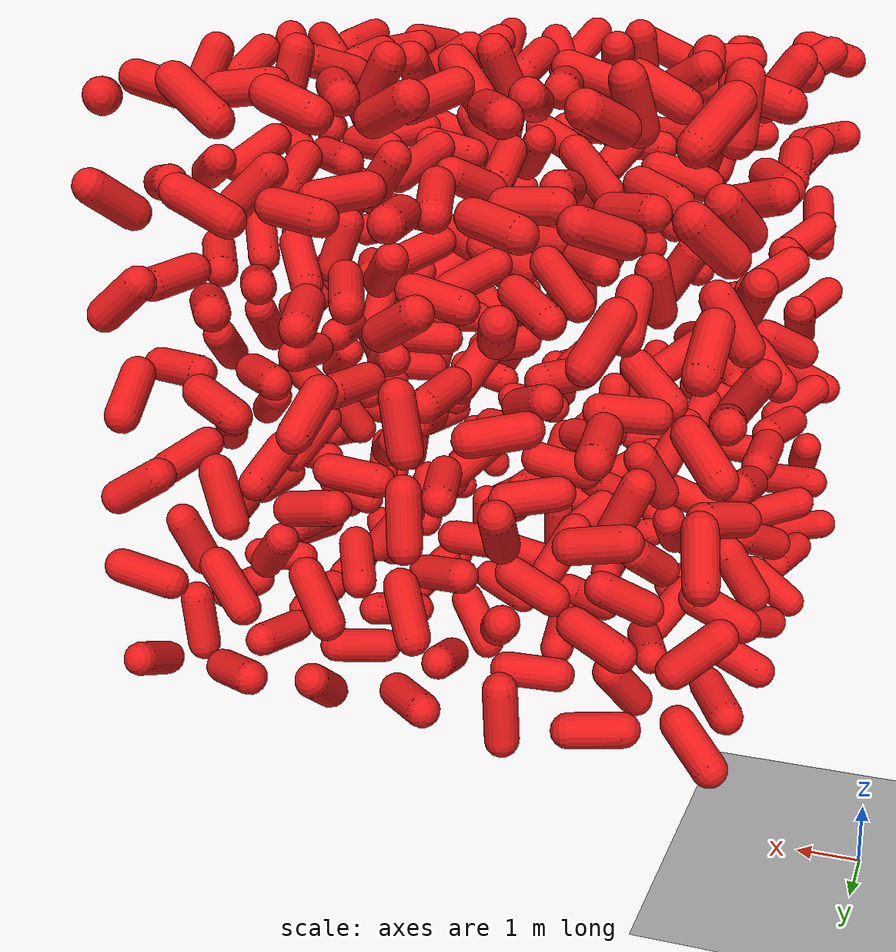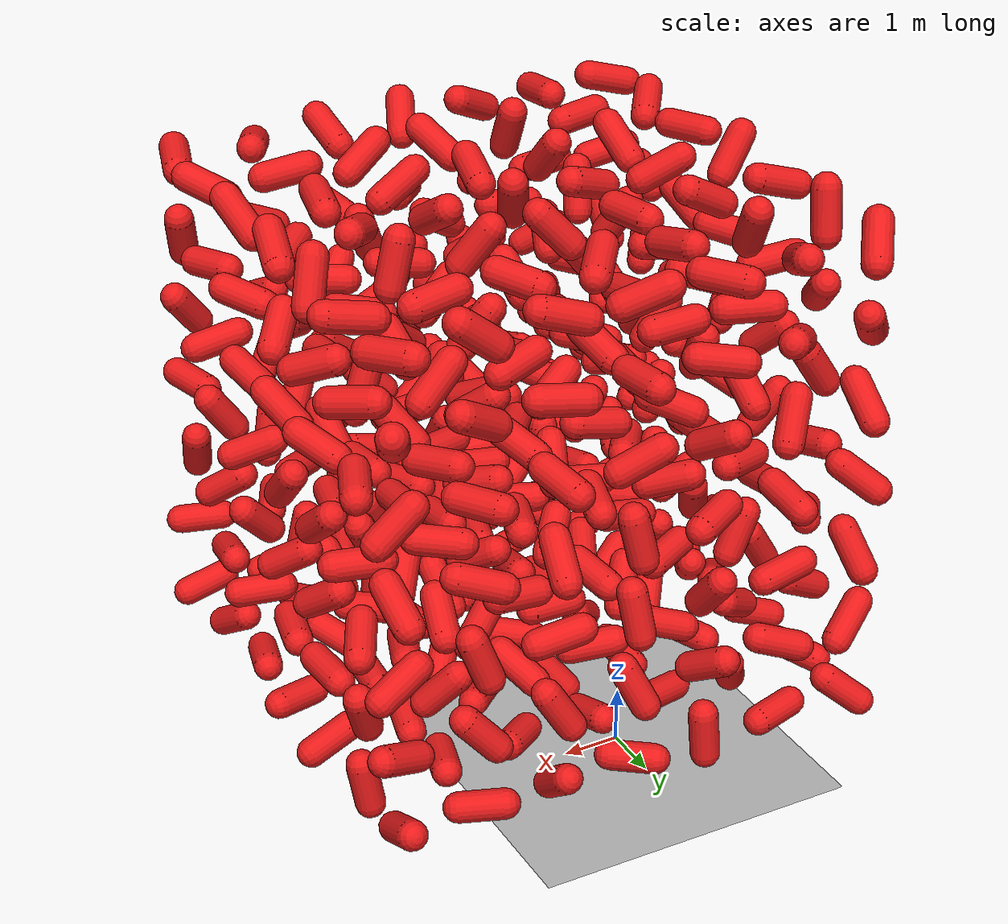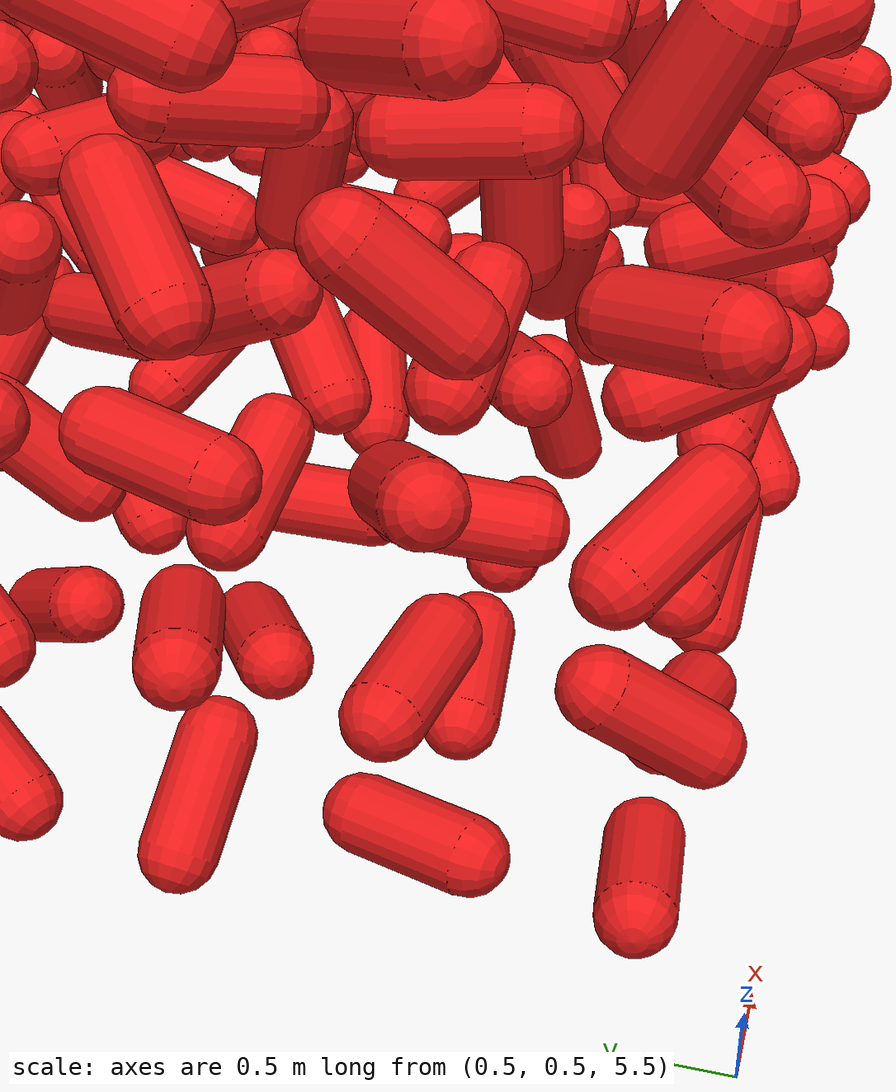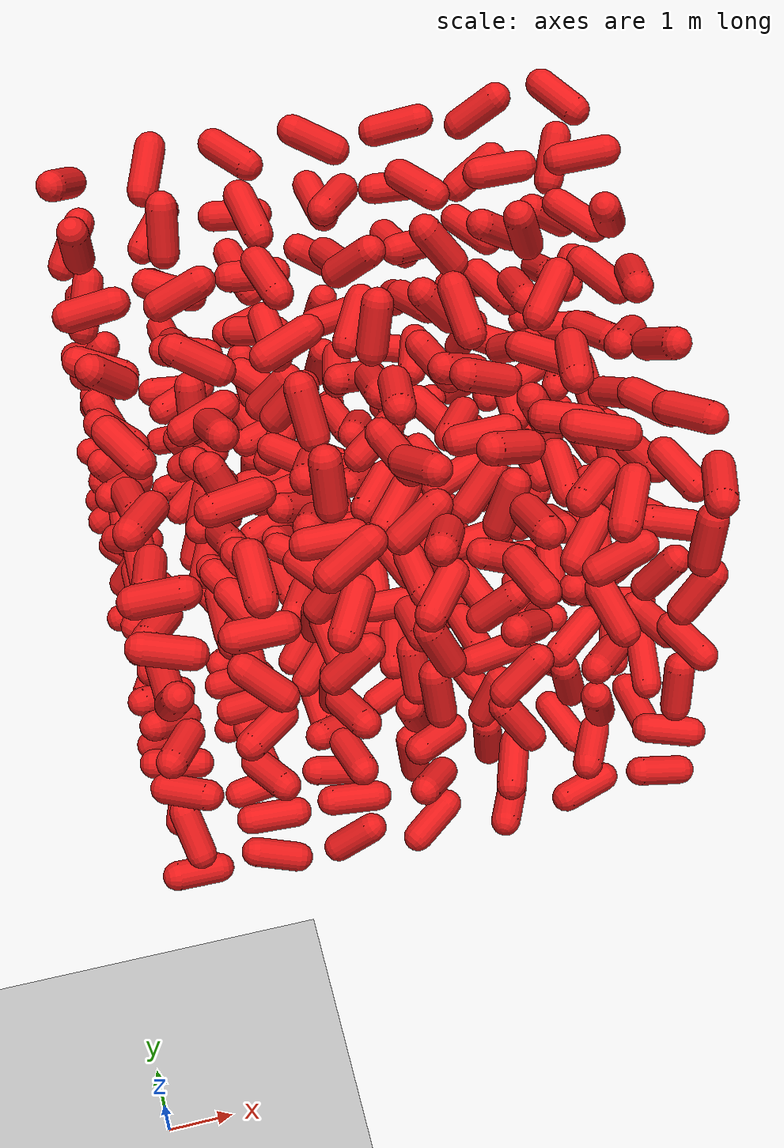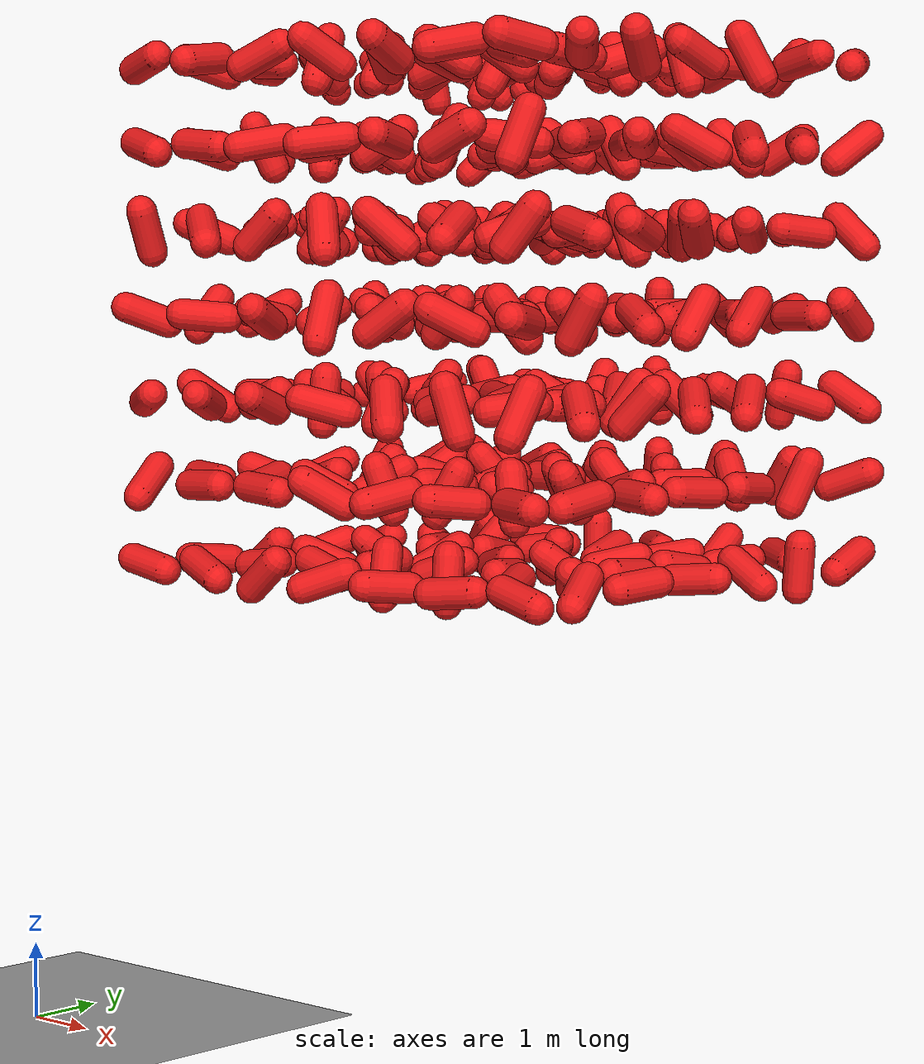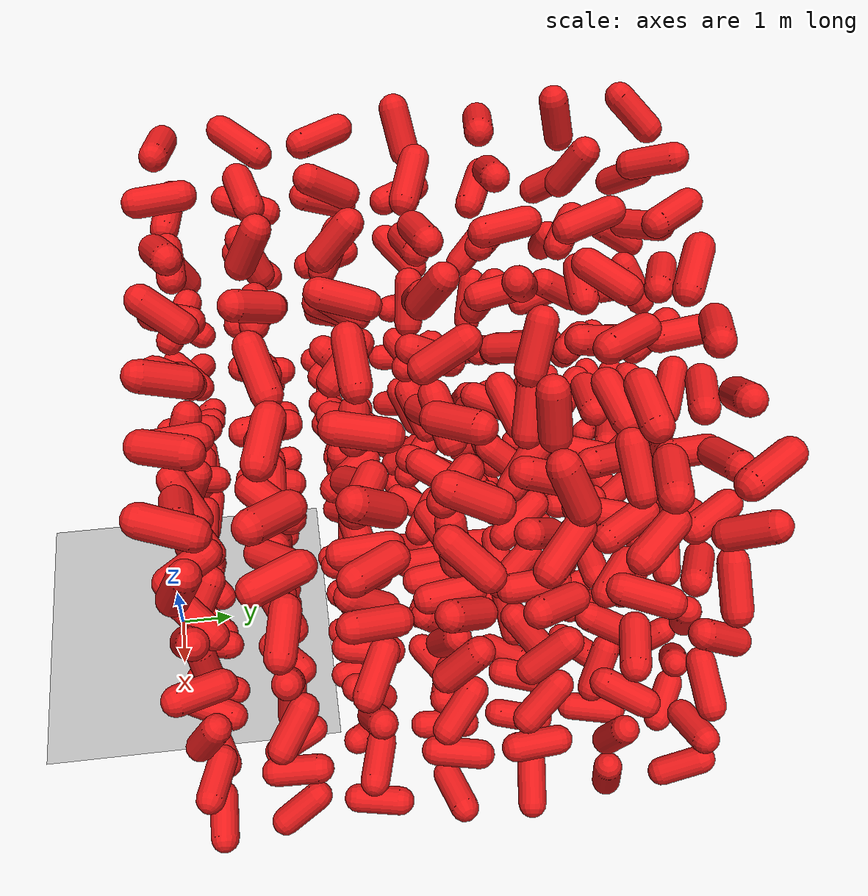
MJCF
<mujoco model="Humanoid and 100 objects">
    <compiler angle="degree"/>

    <option timestep="0.01" iterations="50" solver="PGS" jacobian="sparse" cone="elliptic" tolerance="1e-10"/>

    <size njmax="5000" nconmax="2000" nstack="1000000000"/>

    <default>
        <geom solimp=".9 .9 .01"/>

        <default class="object5">
			<geom type="capsule" material="geom" rgba=".9 .1 .1 1" size="0.200000 0.300000"/>
        </default>
    </default>

    <asset>
        <texture type="skybox" builtin="gradient" width="128" height="128" rgb1=".4 .6 .8" rgb2="0 0 0"/>
        <texture name="texgeom" type="cube" builtin="flat" mark="cross" width="128" height="128"
            rgb1="0.6 0.6 0.6" rgb2="0.6 0.6 0.6" markrgb="1 1 1"/>
        <texture name="texplane" type="2d" builtin="checker" rgb1=".4 .4 .4" rgb2=".6 .6 .6"
            width="512" height="512"/>
        <material name='geom' texture="texgeom" texuniform="true"/>
        <material name='MatPlane' reflectance='0.3' texture="texplane" texrepeat="1 1" texuniform="true"/>
    </asset>

    <visual>
        <quality shadowsize="4096" offsamples="8"/>
        <map znear="0.1" force="0.05"/>
    </visual>

    <statistic extent="4"/>

    <worldbody>
        <light directional="true" diffuse=".8 .8 .8" pos="0 0 10" dir="0 0 -10"/>

        <geom pos="0 0 0" type="plane" size="3 3 .5" rgba=".7 .7 .7 1" material="MatPlane"/>
		<body pos="1.100893 1.100410 6.100363" quat="-0.494400 0.538704 -0.563164 0.384985"> <freejoint/> <geom class="object5"/> </body>
		<body pos="1.100861 1.100540 7.200403" quat="-0.002655 -0.224593 0.869704 -0.439507"> <freejoint/> <geom class="object5"/> </body>
		<body pos="1.100517 1.100451 8.300162" quat="0.063807 -0.704552 0.329656 0.625190"> <freejoint/> <geom class="object5"/> </body>
		<body pos="1.100152 1.100041 9.400187" quat="-0.766880 -0.560264 0.108393 0.293684"> <freejoint/> <geom class="object5"/> </body>
		<body pos="1.100228 1.100968 10.500161" quat="0.228567 -0.940272 -0.252173 0.007341"> <freejoint/> <geom class="object5"/> </body>
		<body pos="1.100011 1.100012 11.600078" quat="-0.401736 -0.694527 -0.367488 -0.470312"> <freejoint/> <geom class="object5"/> </body>
		<body pos="1.100793 1.100962 12.700369" quat="0.566769 -0.426342 -0.667836 0.225830"> <freejoint/> <geom class="object5"/> </body>
		<body pos="1.100050 2.200652 6.100640" quat="0.333247 0.113502 -0.670125 0.653449"> <freejoint/> <geom class="object5"/> </body>
		<body pos="1.100081 2.200176 7.200572" quat="-0.574159 -0.504613 -0.524654 -0.374759"> <freejoint/> <geom class="object5"/> </body>
		<body pos="1.100209 2.200315 8.300208" quat="-0.341558 0.290009 0.379047 -0.809665"> <freejoint/> <geom class="object5"/> </body>
		<body pos="1.100193 2.200839 9.400765" quat="-0.311962 -0.642067 -0.653946 0.250569"> <freejoint/> <geom class="object5"/> </body>
		<body pos="1.100458 2.200787 10.500737" quat="-0.538163 0.778904 -0.287607 0.144815"> <freejoint/> <geom class="object5"/> </body>
		<body pos="1.100269 2.200279 11.600436" quat="0.464962 0.229989 -0.553152 0.651873"> <freejoint/> <geom class="object5"/> </body>
		<body pos="1.100776 2.200312 12.700257" quat="0.588730 0.104719 -0.564862 0.568649"> <freejoint/> <geom class="object5"/> </body>
		<body pos="1.100667 3.300464 6.100508" quat="0.556659 0.398403 0.241264 0.687893"> <freejoint/> <geom class="object5"/> </body>
		<body pos="1.100637 3.300297 7.200173" quat="-0.589104 -0.511432 0.301616 0.548108"> <freejoint/> <geom class="object5"/> </body>
		<body pos="1.100678 3.300393 8.300910" quat="0.115077 0.116412 0.703360 0.691730"> <freejoint/> <geom class="object5"/> </body>
		<body pos="1.100561 3.300763 9.400255" quat="-0.011741 -0.658527 -0.544822 0.519012"> <freejoint/> <geom class="object5"/> </body>
		<body pos="1.100859 3.300988 10.500349" quat="-0.203311 -0.291498 0.771708 -0.527409"> <freejoint/> <geom class="object5"/> </body>
		<body pos="1.100987 3.300121 11.600215" quat="0.461864 -0.658081 -0.518266 -0.291567"> <freejoint/> <geom class="object5"/> </body>
		<body pos="1.100567 3.300112 12.700129" quat="-0.675001 -0.509808 -0.495018 0.198559"> <freejoint/> <geom class="object5"/> </body>
		<body pos="1.100028 4.400475 6.100495" quat="-0.282742 -0.134454 -0.550959 -0.773578"> <freejoint/> <geom class="object5"/> </body>
		<body pos="1.100716 4.400519 7.200267" quat="-0.172404 -0.664898 -0.510809 0.516974"> <freejoint/> <geom class="object5"/> </body>
		<body pos="1.100838 4.400478 8.300288" quat="0.347760 0.315190 -0.585985 0.660560"> <freejoint/> <geom class="object5"/> </body>
		<body pos="1.100040 4.400778 9.400973" quat="-0.196145 -0.437305 0.240361 -0.844108"> <freejoint/> <geom class="object5"/> </body>
		<body pos="1.100182 4.400455 10.500325" quat="-0.029889 -0.585697 -0.612022 -0.530561"> <freejoint/> <geom class="object5"/> </body>
		<body pos="1.100736 4.400803 11.600199" quat="0.684540 0.651668 0.137140 0.296525"> <freejoint/> <geom class="object5"/> </body>
		<body pos="1.100835 4.400755 12.700578" quat="-0.147376 -0.673767 -0.663596 -0.289756"> <freejoint/> <geom class="object5"/> </body>
		<body pos="1.100735 5.500305 6.100354" quat="0.103212 -0.549058 0.157351 -0.814324"> <freejoint/> <geom class="object5"/> </body>
		<body pos="1.100801 5.500366 7.200245" quat="0.249105 0.511954 -0.814293 -0.113032"> <freejoint/> <geom class="object5"/> </body>
		<body pos="1.100588 5.500871 8.300170" quat="-0.030025 0.057897 0.632193 0.772061"> <freejoint/> <geom class="object5"/> </body>
		<body pos="1.100001 5.500214 9.400260" quat="0.250196 0.785090 0.532853 0.192623"> <freejoint/> <geom class="object5"/> </body>
		<body pos="1.100331 5.500411 10.500585" quat="-0.262975 -0.182596 -0.893531 0.314811"> <freejoint/> <geom class="object5"/> </body>
		<body pos="1.100925 5.500993 11.600234" quat="0.502390 0.270633 -0.550557 -0.609302"> <freejoint/> <geom class="object5"/> </body>
		<body pos="1.100872 5.500954 12.700962" quat="-0.563465 0.357514 0.717168 -0.200900"> <freejoint/> <geom class="object5"/> </body>
		<body pos="1.100509 6.600315 6.100127" quat="0.756817 0.584854 0.229732 0.179990"> <freejoint/> <geom class="object5"/> </body>
		<body pos="1.100261 6.600064 7.200437" quat="0.275157 0.780081 -0.354401 -0.436076"> <freejoint/> <geom class="object5"/> </body>
		<body pos="1.100052 6.600160 8.300783" quat="-0.525430 0.610474 0.136425 0.576744"> <freejoint/> <geom class="object5"/> </body>
		<body pos="1.100054 6.600466 9.400112" quat="0.571387 0.645950 0.445877 -0.239705"> <freejoint/> <geom class="object5"/> </body>
		<body pos="1.100271 6.600051 10.500889" quat="0.688214 -0.192341 0.207501 -0.668064"> <freejoint/> <geom class="object5"/> </body>
		<body pos="1.100230 6.600721 11.600924" quat="0.111862 0.561597 0.708888 -0.411794"> <freejoint/> <geom class="object5"/> </body>
		<body pos="1.100033 6.600722 12.700048" quat="0.090701 -0.739736 0.665648 0.038434"> <freejoint/> <geom class="object5"/> </body>
		<body pos="1.100723 7.700139 6.100262" quat="-0.447475 0.531423 0.717609 -0.048910"> <freejoint/> <geom class="object5"/> </body>
		<body pos="1.100599 7.700436 7.200475" quat="-0.665948 -0.400387 0.185114 0.601612"> <freejoint/> <geom class="object5"/> </body>
		<body pos="1.100932 7.700589 8.300878" quat="-0.948305 -0.297607 -0.104853 0.033954"> <freejoint/> <geom class="object5"/> </body>
		<body pos="1.100522 7.700998 9.400870" quat="-0.620977 -0.459126 -0.045775 -0.633637"> <freejoint/> <geom class="object5"/> </body>
		<body pos="1.100203 7.700473 10.500752" quat="0.419250 -0.860278 -0.255265 -0.137808"> <freejoint/> <geom class="object5"/> </body>
		<body pos="1.100248 7.700604 11.600903" quat="0.040337 0.698501 0.585825 -0.408997"> <freejoint/> <geom class="object5"/> </body>
		<body pos="1.100938 7.700247 12.700527" quat="-0.668458 -0.429496 -0.056497 0.604570"> <freejoint/> <geom class="object5"/> </body>
		<body pos="2.200970 1.100399 6.100901" quat="-0.636473 -0.270040 0.509564 0.512177"> <freejoint/> <geom class="object5"/> </body>
		<body pos="2.200584 1.100239 7.200561" quat="0.709901 0.147467 0.680826 0.103782"> <freejoint/> <geom class="object5"/> </body>
		<body pos="2.200181 1.100675 8.300478" quat="-0.604357 0.649835 0.456032 0.067099"> <freejoint/> <geom class="object5"/> </body>
		<body pos="2.200744 1.100922 9.400666" quat="-0.009919 -0.543582 -0.403447 0.735969"> <freejoint/> <geom class="object5"/> </body>
		<body pos="2.200903 1.100716 10.500187" quat="-0.729289 0.018841 0.487619 0.479594"> <freejoint/> <geom class="object5"/> </body>
		<body pos="2.200930 1.100779 11.600283" quat="-0.540045 0.428788 0.522480 -0.501505"> <freejoint/> <geom class="object5"/> </body>
		<body pos="2.200283 1.100057 12.700208" quat="-0.057264 0.060193 -0.665790 -0.741500"> <freejoint/> <geom class="object5"/> </body>
		<body pos="2.200738 2.200545 6.100038" quat="-0.485013 -0.556230 0.495864 0.457699"> <freejoint/> <geom class="object5"/> </body>
		<body pos="2.200499 2.200864 7.200502" quat="0.126423 0.006269 0.773606 -0.620897"> <freejoint/> <geom class="object5"/> </body>
		<body pos="2.200322 2.200669 8.300422" quat="0.138347 0.581846 0.039980 0.800448"> <freejoint/> <geom class="object5"/> </body>
		<body pos="2.200854 2.200905 9.400003" quat="-0.105672 0.104869 -0.764575 -0.627105"> <freejoint/> <geom class="object5"/> </body>
		<body pos="2.200169 2.200156 10.500422" quat="-0.418030 0.593207 -0.331947 -0.602633"> <freejoint/> <geom class="object5"/> </body>
		<body pos="2.200824 2.200151 11.600270" quat="-0.117910 0.820394 0.526452 0.189472"> <freejoint/> <geom class="object5"/> </body>
		<body pos="2.200593 2.200639 12.700809" quat="0.561469 0.535053 -0.437002 -0.455522"> <freejoint/> <geom class="object5"/> </body>
		<body pos="2.200034 3.300338 6.100742" quat="-0.828611 -0.270430 0.489664 -0.022394"> <freejoint/> <geom class="object5"/> </body>
		<body pos="2.200094 3.300102 7.200709" quat="-0.644163 0.282762 -0.528899 0.474727"> <freejoint/> <geom class="object5"/> </body>
		<body pos="2.200208 3.300651 8.300397" quat="-0.060727 0.121061 0.459393 -0.877847"> <freejoint/> <geom class="object5"/> </body>
		<body pos="2.200311 3.300208 9.400047" quat="0.595578 0.641710 0.482831 -0.019191"> <freejoint/> <geom class="object5"/> </body>
		<body pos="2.200570 3.300368 10.500835" quat="0.559276 0.225793 0.390283 -0.695634"> <freejoint/> <geom class="object5"/> </body>
		<body pos="2.200870 3.300069 11.600573" quat="0.259736 0.904675 0.320458 0.106803"> <freejoint/> <geom class="object5"/> </body>
		<body pos="2.200536 3.300973 12.700131" quat="0.143147 -0.145106 -0.880170 -0.428666"> <freejoint/> <geom class="object5"/> </body>
		<body pos="2.200919 4.400102 6.100621" quat="-0.049813 0.618096 0.650152 0.439066"> <freejoint/> <geom class="object5"/> </body>
		<body pos="2.200498 4.400849 7.200880" quat="0.013011 0.080783 -0.908417 0.409979"> <freejoint/> <geom class="object5"/> </body>
		<body pos="2.200201 4.400944 8.300993" quat="0.738659 0.018655 -0.286847 0.609716"> <freejoint/> <geom class="object5"/> </body>
		<body pos="2.200083 4.400094 9.400622" quat="-0.488685 0.654994 -0.567471 0.100731"> <freejoint/> <geom class="object5"/> </body>
		<body pos="2.200647 4.400485 10.500854" quat="-0.202042 -0.776643 -0.557744 -0.211959"> <freejoint/> <geom class="object5"/> </body>
		<body pos="2.200749 4.400211 11.600445" quat="-0.565906 -0.393810 0.704031 0.170307"> <freejoint/> <geom class="object5"/> </body>
		<body pos="2.200213 4.400484 12.700708" quat="-0.442777 0.504507 0.078408 -0.737071"> <freejoint/> <geom class="object5"/> </body>
		<body pos="2.200131 5.500496 6.100024" quat="-0.525932 -0.272588 -0.638724 0.491043"> <freejoint/> <geom class="object5"/> </body>
		<body pos="2.200830 5.500106 7.200345" quat="-0.713207 0.178598 -0.414007 -0.536690"> <freejoint/> <geom class="object5"/> </body>
		<body pos="2.200865 5.500189 8.300106" quat="-0.015486 0.505079 0.811262 -0.294125"> <freejoint/> <geom class="object5"/> </body>
		<body pos="2.200575 5.500250 9.400880" quat="-0.711352 0.153403 -0.399350 0.557643"> <freejoint/> <geom class="object5"/> </body>
		<body pos="2.200777 5.500383 10.500561" quat="-0.660190 0.143955 -0.191682 -0.711817"> <freejoint/> <geom class="object5"/> </body>
		<body pos="2.200411 5.500508 11.600111" quat="-0.597604 0.594765 0.503445 -0.188855"> <freejoint/> <geom class="object5"/> </body>
		<body pos="2.200820 5.500814 12.700730" quat="0.074123 -0.846836 -0.133239 0.509532"> <freejoint/> <geom class="object5"/> </body>
		<body pos="2.200506 6.600615 6.100464" quat="0.328141 0.561260 -0.753433 0.098232"> <freejoint/> <geom class="object5"/> </body>
		<body pos="2.200442 6.600605 7.200978" quat="-0.666722 0.463279 -0.197349 0.549461"> <freejoint/> <geom class="object5"/> </body>
		<body pos="2.200669 6.600179 8.300483" quat="0.883962 -0.076755 -0.203679 0.413805"> <freejoint/> <geom class="object5"/> </body>
		<body pos="2.200610 6.600995 9.400369" quat="0.616537 0.513340 -0.544282 -0.245196"> <freejoint/> <geom class="object5"/> </body>
		<body pos="2.200100 6.600939 10.500071" quat="-0.234349 0.535845 -0.722513 -0.368681"> <freejoint/> <geom class="object5"/> </body>
		<body pos="2.200711 6.600605 11.600987" quat="0.618884 0.586030 0.454107 0.259495"> <freejoint/> <geom class="object5"/> </body>
		<body pos="2.200223 6.600182 12.700047" quat="0.281923 -0.020957 0.253320 0.925153"> <freejoint/> <geom class="object5"/> </body>
		<body pos="2.200872 7.700925 6.100401" quat="-0.569795 0.298140 0.614259 -0.457309"> <freejoint/> <geom class="object5"/> </body>
		<body pos="2.200587 7.700953 7.200637" quat="0.488691 -0.614128 -0.536842 0.309564"> <freejoint/> <geom class="object5"/> </body>
		<body pos="2.200821 7.700278 8.300165" quat="-0.459493 0.552686 -0.535060 0.443975"> <freejoint/> <geom class="object5"/> </body>
		<body pos="2.200958 7.700352 9.400269" quat="0.739044 0.619404 -0.126289 0.232819"> <freejoint/> <geom class="object5"/> </body>
		<body pos="2.200065 7.700420 10.500443" quat="-0.934423 -0.257193 0.186054 0.161524"> <freejoint/> <geom class="object5"/> </body>
		<body pos="2.200303 7.700240 11.600431" quat="0.135393 0.315676 0.474880 0.810251"> <freejoint/> <geom class="object5"/> </body>
		<body pos="2.200499 7.700277 12.700363" quat="-0.354369 0.021984 -0.549241 -0.756488"> <freejoint/> <geom class="object5"/> </body>
		<body pos="3.300787 1.100494 6.100559" quat="-0.182210 0.831459 0.349877 -0.391230"> <freejoint/> <geom class="object5"/> </body>
		<body pos="3.300004 1.100658 7.200480" quat="0.467744 -0.494500 0.541739 -0.493157"> <freejoint/> <geom class="object5"/> </body>
		<body pos="3.300565 1.100307 8.300110" quat="-0.598994 -0.502044 0.300063 -0.546919"> <freejoint/> <geom class="object5"/> </body>
		<body pos="3.300186 1.100335 9.400150" quat="-0.603042 -0.257118 -0.510261 0.556654"> <freejoint/> <geom class="object5"/> </body>
		<body pos="3.300788 1.100090 10.500870" quat="0.091721 -0.404413 -0.019122 -0.909765"> <freejoint/> <geom class="object5"/> </body>
		<body pos="3.300578 1.100851 11.600112" quat="0.573582 0.425536 -0.637498 0.288996"> <freejoint/> <geom class="object5"/> </body>
		<body pos="3.300057 1.100308 12.700354" quat="-0.684449 -0.152675 -0.513323 -0.494692"> <freejoint/> <geom class="object5"/> </body>
		<body pos="3.300906 2.200748 6.100513" quat="0.660840 0.327772 -0.492581 -0.461758"> <freejoint/> <geom class="object5"/> </body>
		<body pos="3.300203 2.200041 7.200934" quat="-0.507927 0.578484 -0.624270 0.132865"> <freejoint/> <geom class="object5"/> </body>
		<body pos="3.300965 2.200690 8.300941" quat="-0.011779 0.382170 0.923300 -0.036395"> <freejoint/> <geom class="object5"/> </body>
		<body pos="3.300029 2.200065 9.400888" quat="-0.284061 -0.259471 -0.760349 0.523310"> <freejoint/> <geom class="object5"/> </body>
		<body pos="3.300161 2.200346 10.500257" quat="-0.039884 0.315241 0.061543 0.946174"> <freejoint/> <geom class="object5"/> </body>
		<body pos="3.300264 2.200614 11.600726" quat="-0.634081 -0.222477 0.699737 0.242515"> <freejoint/> <geom class="object5"/> </body>
		<body pos="3.300505 2.200544 12.700492" quat="0.594111 -0.126305 0.159365 0.778255"> <freejoint/> <geom class="object5"/> </body>
		<body pos="3.300322 3.300126 6.100613" quat="0.277330 -0.224577 -0.650158 -0.670781"> <freejoint/> <geom class="object5"/> </body>
		<body pos="3.300813 3.300778 7.200606" quat="-0.760780 0.459927 -0.192530 0.415466"> <freejoint/> <geom class="object5"/> </body>
		<body pos="3.300632 3.300748 8.300045" quat="-0.098716 0.973859 -0.203157 -0.024087"> <freejoint/> <geom class="object5"/> </body>
		<body pos="3.300419 3.300440 9.400925" quat="-0.296380 0.089045 -0.650280 0.693805"> <freejoint/> <geom class="object5"/> </body>
		<body pos="3.300122 3.300376 10.500921" quat="0.861873 0.418729 -0.025869 -0.284908"> <freejoint/> <geom class="object5"/> </body>
		<body pos="3.300924 3.300596 11.600288" quat="0.797057 0.510775 0.002197 -0.322186"> <freejoint/> <geom class="object5"/> </body>
		<body pos="3.300513 3.300470 12.700563" quat="0.413598 -0.093991 -0.328443 -0.843935"> <freejoint/> <geom class="object5"/> </body>
		<body pos="3.300922 4.400198 6.100275" quat="-0.434822 0.475118 0.104798 0.757767"> <freejoint/> <geom class="object5"/> </body>
		<body pos="3.300372 4.400054 7.200625" quat="-0.059133 0.422714 0.690083 0.584467"> <freejoint/> <geom class="object5"/> </body>
		<body pos="3.300332 4.400298 8.300227" quat="-0.687500 0.566328 0.324819 -0.317975"> <freejoint/> <geom class="object5"/> </body>
		<body pos="3.300689 4.400104 9.400949" quat="-0.441843 -0.426961 0.003663 0.788965"> <freejoint/> <geom class="object5"/> </body>
		<body pos="3.300977 4.400218 10.500997" quat="0.255213 -0.306362 0.616843 -0.678612"> <freejoint/> <geom class="object5"/> </body>
		<body pos="3.300094 4.400165 11.600524" quat="0.106469 0.915708 -0.206364 -0.327959"> <freejoint/> <geom class="object5"/> </body>
		<body pos="3.300154 4.400155 12.700358" quat="0.377502 -0.493193 -0.648523 0.440081"> <freejoint/> <geom class="object5"/> </body>
		<body pos="3.300926 5.500995 6.100574" quat="0.219518 0.090908 0.621704 -0.746346"> <freejoint/> <geom class="object5"/> </body>
		<body pos="3.300358 5.500145 7.200432" quat="0.263979 -0.939694 0.014889 -0.216955"> <freejoint/> <geom class="object5"/> </body>
		<body pos="3.300447 5.500126 8.300250" quat="-0.004115 -0.626139 -0.055231 -0.777742"> <freejoint/> <geom class="object5"/> </body>
		<body pos="3.300635 5.500642 9.400998" quat="-0.324923 -0.633774 -0.321162 0.624188"> <freejoint/> <geom class="object5"/> </body>
		<body pos="3.300552 5.500548 10.500755" quat="0.264695 0.563244 -0.753521 -0.211894"> <freejoint/> <geom class="object5"/> </body>
		<body pos="3.300284 5.500932 11.600774" quat="0.725954 -0.629578 0.146124 0.235096"> <freejoint/> <geom class="object5"/> </body>
		<body pos="3.300599 5.500217 12.700504" quat="0.693605 -0.705901 -0.030265 0.140359"> <freejoint/> <geom class="object5"/> </body>
		<body pos="3.300485 6.600913 6.100228" quat="-0.294982 -0.748034 0.108999 0.584423"> <freejoint/> <geom class="object5"/> </body>
		<body pos="3.300748 6.600482 7.200472" quat="-0.588697 0.178496 0.787670 0.033933"> <freejoint/> <geom class="object5"/> </body>
		<body pos="3.300995 6.600678 8.300429" quat="0.122228 -0.558062 -0.373018 0.731084"> <freejoint/> <geom class="object5"/> </body>
		<body pos="3.300771 6.600937 9.400896" quat="0.571807 0.488759 0.657811 -0.037888"> <freejoint/> <geom class="object5"/> </body>
		<body pos="3.300939 6.600995 10.500167" quat="0.549831 -0.153698 0.546718 -0.612505"> <freejoint/> <geom class="object5"/> </body>
		<body pos="3.300753 6.600175 11.600188" quat="-0.531765 0.433654 -0.586669 0.430104"> <freejoint/> <geom class="object5"/> </body>
		<body pos="3.300217 6.600376 12.700116" quat="-0.703427 0.594714 -0.164679 -0.352684"> <freejoint/> <geom class="object5"/> </body>
		<body pos="3.300476 7.700329 6.100307" quat="-0.836816 -0.038354 -0.006396 -0.546102"> <freejoint/> <geom class="object5"/> </body>
		<body pos="3.300809 7.700725 7.200171" quat="-0.401994 0.395974 -0.308825 -0.765658"> <freejoint/> <geom class="object5"/> </body>
		<body pos="3.300161 7.700702 8.300963" quat="0.653226 -0.270160 0.194754 0.679985"> <freejoint/> <geom class="object5"/> </body>
		<body pos="3.300821 7.700857 9.400479" quat="0.273953 -0.447688 -0.481933 0.701617"> <freejoint/> <geom class="object5"/> </body>
		<body pos="3.300066 7.700993 10.500218" quat="0.779320 -0.329026 -0.370992 -0.383101"> <freejoint/> <geom class="object5"/> </body>
		<body pos="3.300713 7.700664 11.600718" quat="-0.545418 0.276571 -0.578602 0.539674"> <freejoint/> <geom class="object5"/> </body>
		<body pos="3.300694 7.700436 12.700657" quat="0.671062 0.405928 0.574106 -0.235160"> <freejoint/> <geom class="object5"/> </body>
		<body pos="4.400313 1.100508 6.100513" quat="0.204833 -0.493555 -0.648885 0.541660"> <freejoint/> <geom class="object5"/> </body>
		<body pos="4.400770 1.100791 7.200730" quat="-0.862165 -0.408001 0.283475 0.099239"> <freejoint/> <geom class="object5"/> </body>
		<body pos="4.400705 1.100949 8.300404" quat="0.560894 -0.647565 0.454796 -0.243348"> <freejoint/> <geom class="object5"/> </body>
		<body pos="4.400775 1.100062 9.400575" quat="0.154337 0.910356 -0.369579 0.104128"> <freejoint/> <geom class="object5"/> </body>
		<body pos="4.400950 1.100121 10.500361" quat="-0.880041 0.219426 0.113544 -0.405570"> <freejoint/> <geom class="object5"/> </body>
		<body pos="4.400295 1.100570 11.600802" quat="-0.169110 0.313497 0.679133 -0.641794"> <freejoint/> <geom class="object5"/> </body>
		<body pos="4.400114 1.100628 12.700123" quat="0.433256 -0.879038 -0.018828 -0.198056"> <freejoint/> <geom class="object5"/> </body>
		<body pos="4.400901 2.200516 6.100672" quat="-0.976465 0.105341 0.060359 0.178260"> <freejoint/> <geom class="object5"/> </body>
		<body pos="4.400139 2.200883 7.200123" quat="-0.688758 -0.172082 -0.003133 0.704266"> <freejoint/> <geom class="object5"/> </body>
		<body pos="4.400946 2.200761 8.300564" quat="0.149881 -0.029232 -0.277451 -0.948526"> <freejoint/> <geom class="object5"/> </body>
		<body pos="4.400595 2.200573 9.400200" quat="0.430451 -0.586054 -0.575420 -0.374358"> <freejoint/> <geom class="object5"/> </body>
		<body pos="4.400627 2.200441 10.500198" quat="-0.345771 0.406825 -0.573707 -0.621125"> <freejoint/> <geom class="object5"/> </body>
		<body pos="4.400352 2.200087 11.600511" quat="0.536600 -0.459402 0.163219 -0.688745"> <freejoint/> <geom class="object5"/> </body>
		<body pos="4.400040 2.200944 12.700456" quat="0.707191 0.483474 -0.050169 0.513437"> <freejoint/> <geom class="object5"/> </body>
		<body pos="4.400220 3.300941 6.100296" quat="0.764946 -0.349955 0.462651 -0.279899"> <freejoint/> <geom class="object5"/> </body>
		<body pos="4.400218 3.300002 7.201000" quat="-0.223055 0.400997 0.616544 0.639783"> <freejoint/> <geom class="object5"/> </body>
		<body pos="4.400275 3.300148 8.300251" quat="0.078714 0.728536 -0.149988 -0.663734"> <freejoint/> <geom class="object5"/> </body>
		<body pos="4.400278 3.300335 9.400564" quat="0.193063 0.649155 -0.539426 0.500344"> <freejoint/> <geom class="object5"/> </body>
		<body pos="4.400075 3.300035 10.500660" quat="-0.742670 0.565792 -0.222772 0.280523"> <freejoint/> <geom class="object5"/> </body>
		<body pos="4.400339 3.300265 11.600895" quat="0.206629 -0.159164 0.877105 -0.403310"> <freejoint/> <geom class="object5"/> </body>
		<body pos="4.400893 3.300381 12.700924" quat="0.277008 -0.479710 -0.654622 -0.514407"> <freejoint/> <geom class="object5"/> </body>
		<body pos="4.400635 4.400143 6.100780" quat="-0.598453 -0.557170 -0.286752 -0.499188"> <freejoint/> <geom class="object5"/> </body>
		<body pos="4.400234 4.400236 7.200377" quat="-0.640031 0.453876 -0.411192 -0.463981"> <freejoint/> <geom class="object5"/> </body>
		<body pos="4.400260 4.400079 8.300752" quat="-0.470958 0.205705 -0.704009 0.490159"> <freejoint/> <geom class="object5"/> </body>
		<body pos="4.400019 4.400143 9.400560" quat="-0.687801 0.399806 -0.571933 -0.199945"> <freejoint/> <geom class="object5"/> </body>
		<body pos="4.400608 4.400230 10.500540" quat="-0.706210 -0.087550 -0.506957 -0.486413"> <freejoint/> <geom class="object5"/> </body>
		<body pos="4.400601 4.400744 11.600375" quat="0.724352 0.420846 -0.271244 0.473951"> <freejoint/> <geom class="object5"/> </body>
		<body pos="4.400211 4.400778 12.700756" quat="-0.966689 0.209911 -0.130541 -0.066395"> <freejoint/> <geom class="object5"/> </body>
		<body pos="4.400101 5.500295 6.100150" quat="0.023890 0.315542 -0.188134 0.929768"> <freejoint/> <geom class="object5"/> </body>
		<body pos="4.400239 5.500198 7.200120" quat="0.435333 -0.546394 0.452285 -0.554416"> <freejoint/> <geom class="object5"/> </body>
		<body pos="4.400983 5.500500 8.300442" quat="-0.113143 -0.370708 -0.315866 0.866027"> <freejoint/> <geom class="object5"/> </body>
		<body pos="4.400996 5.500070 9.400420" quat="0.130289 -0.569510 -0.688619 -0.429520"> <freejoint/> <geom class="object5"/> </body>
		<body pos="4.400763 5.500180 10.500000" quat="-0.022776 -0.483923 -0.185248 0.854975"> <freejoint/> <geom class="object5"/> </body>
		<body pos="4.400006 5.500853 11.600358" quat="0.040052 0.492290 0.680932 -0.540719"> <freejoint/> <geom class="object5"/> </body>
		<body pos="4.400962 5.500825 12.700606" quat="-0.357649 0.531536 0.762526 -0.090062"> <freejoint/> <geom class="object5"/> </body>
		<body pos="4.400476 6.600036 6.100859" quat="-0.074305 0.001916 0.598663 0.797545"> <freejoint/> <geom class="object5"/> </body>
		<body pos="4.400103 6.600531 7.200996" quat="0.572287 0.590106 0.493259 0.284531"> <freejoint/> <geom class="object5"/> </body>
		<body pos="4.400440 6.600145 8.300354" quat="-0.517633 -0.526533 0.355278 -0.573234"> <freejoint/> <geom class="object5"/> </body>
		<body pos="4.400472 6.600834 9.400855" quat="0.532718 0.336131 -0.553733 0.544617"> <freejoint/> <geom class="object5"/> </body>
		<body pos="4.400716 6.600676 10.500538" quat="0.561776 -0.430698 0.449789 -0.544606"> <freejoint/> <geom class="object5"/> </body>
		<body pos="4.400441 6.600013 11.600688" quat="0.405078 0.123153 0.539803 -0.727570"> <freejoint/> <geom class="object5"/> </body>
		<body pos="4.400153 6.600156 12.700538" quat="-0.602336 0.619062 -0.503862 -0.008729"> <freejoint/> <geom class="object5"/> </body>
		<body pos="4.400868 7.700312 6.100036" quat="-0.413666 -0.197458 0.672492 0.581073"> <freejoint/> <geom class="object5"/> </body>
		<body pos="4.400723 7.700122 7.200460" quat="-0.226396 0.219953 0.939114 0.135758"> <freejoint/> <geom class="object5"/> </body>
		<body pos="4.400607 7.700681 8.300252" quat="0.095101 -0.937605 0.323353 0.085413"> <freejoint/> <geom class="object5"/> </body>
		<body pos="4.400068 7.700029 9.400190" quat="-0.512055 -0.116033 0.008044 -0.851041"> <freejoint/> <geom class="object5"/> </body>
		<body pos="4.400694 7.700145 10.500987" quat="0.864264 -0.162502 -0.474639 -0.036870"> <freejoint/> <geom class="object5"/> </body>
		<body pos="4.400941 7.700191 11.600065" quat="-0.408494 -0.328741 -0.631527 0.571170"> <freejoint/> <geom class="object5"/> </body>
		<body pos="4.400345 7.700629 12.700963" quat="-0.662873 -0.118624 0.533439 0.511830"> <freejoint/> <geom class="object5"/> </body>
		<body pos="5.500810 1.100462 6.100234" quat="0.256864 -0.542829 -0.496102 -0.627089"> <freejoint/> <geom class="object5"/> </body>
		<body pos="5.500997 1.100817 7.200655" quat="0.599773 0.625381 -0.463500 0.185309"> <freejoint/> <geom class="object5"/> </body>
		<body pos="5.500330 1.100241 8.300851" quat="0.924062 -0.270569 -0.264388 0.054784"> <freejoint/> <geom class="object5"/> </body>
		<body pos="5.500217 1.100960 9.400188" quat="0.236680 0.869249 -0.186377 -0.391985"> <freejoint/> <geom class="object5"/> </body>
		<body pos="5.500283 1.100367 10.500781" quat="-0.383994 0.784196 -0.465794 0.143599"> <freejoint/> <geom class="object5"/> </body>
		<body pos="5.500089 1.100517 11.600959" quat="-0.642015 0.753738 0.124766 -0.064263"> <freejoint/> <geom class="object5"/> </body>
		<body pos="5.500502 1.100852 12.700098" quat="0.436693 -0.605078 -0.589096 -0.310074"> <freejoint/> <geom class="object5"/> </body>
		<body pos="5.500215 2.200017 6.100669" quat="-0.053653 -0.505224 -0.860485 0.037896"> <freejoint/> <geom class="object5"/> </body>
		<body pos="5.500095 2.200558 7.200581" quat="0.038461 -0.223975 -0.103036 -0.968369"> <freejoint/> <geom class="object5"/> </body>
		<body pos="5.500475 2.200399 8.301000" quat="-0.614565 -0.381472 -0.473177 -0.502885"> <freejoint/> <geom class="object5"/> </body>
		<body pos="5.500667 2.200258 9.400599" quat="0.385912 -0.136260 -0.911974 0.028445"> <freejoint/> <geom class="object5"/> </body>
		<body pos="5.500194 2.200627 10.500310" quat="-0.391209 -0.592094 -0.623743 -0.327603"> <freejoint/> <geom class="object5"/> </body>
		<body pos="5.500625 2.200268 11.600863" quat="0.919285 -0.066552 0.222785 0.317573"> <freejoint/> <geom class="object5"/> </body>
		<body pos="5.500250 2.200496 12.700651" quat="-0.799792 0.040109 0.498925 -0.331357"> <freejoint/> <geom class="object5"/> </body>
		<body pos="5.500082 3.300699 6.100765" quat="-0.677756 0.712848 0.177664 -0.030503"> <freejoint/> <geom class="object5"/> </body>
		<body pos="5.500027 3.300764 7.200931" quat="-0.529252 0.676719 -0.334844 -0.387070"> <freejoint/> <geom class="object5"/> </body>
		<body pos="5.500248 3.300186 8.300819" quat="0.062210 0.320947 -0.674492 0.661955"> <freejoint/> <geom class="object5"/> </body>
		<body pos="5.500420 3.300045 9.400039" quat="0.587663 -0.479005 0.515918 -0.398792"> <freejoint/> <geom class="object5"/> </body>
		<body pos="5.500502 3.300802 10.500891" quat="0.417040 0.740973 -0.493321 -0.183497"> <freejoint/> <geom class="object5"/> </body>
		<body pos="5.500141 3.300467 11.600390" quat="0.430438 -0.617959 -0.457106 0.473186"> <freejoint/> <geom class="object5"/> </body>
		<body pos="5.500002 3.300898 12.700570" quat="-0.549566 0.355398 0.341861 -0.674389"> <freejoint/> <geom class="object5"/> </body>
		<body pos="5.500529 4.400187 6.100199" quat="0.422132 -0.401713 0.796481 0.161401"> <freejoint/> <geom class="object5"/> </body>
		<body pos="5.500199 4.400641 7.200399" quat="-0.853081 -0.254426 -0.218307 0.399828"> <freejoint/> <geom class="object5"/> </body>
		<body pos="5.500043 4.400915 8.300929" quat="0.087461 -0.112056 0.647995 0.748262"> <freejoint/> <geom class="object5"/> </body>
		<body pos="5.500110 4.400702 9.400159" quat="-0.732795 0.298770 -0.606742 0.074917"> <freejoint/> <geom class="object5"/> </body>
		<body pos="5.500350 4.400505 10.500486" quat="0.602162 -0.594559 0.527368 0.076044"> <freejoint/> <geom class="object5"/> </body>
		<body pos="5.500176 4.400867 11.600681" quat="0.494660 0.443831 -0.116523 -0.738071"> <freejoint/> <geom class="object5"/> </body>
		<body pos="5.500632 4.400066 12.700575" quat="-0.668269 0.423055 -0.245518 -0.560501"> <freejoint/> <geom class="object5"/> </body>
		<body pos="5.500941 5.500088 6.100109" quat="0.605647 0.421196 -0.656089 0.159160"> <freejoint/> <geom class="object5"/> </body>
		<body pos="5.500708 5.500480 7.200906" quat="-0.618486 -0.303205 0.148378 0.709595"> <freejoint/> <geom class="object5"/> </body>
		<body pos="5.500755 5.500696 8.300239" quat="-0.374720 0.436366 -0.259521 -0.775769"> <freejoint/> <geom class="object5"/> </body>
		<body pos="5.500836 5.500835 9.400928" quat="-0.003855 0.355171 -0.471186 -0.807355"> <freejoint/> <geom class="object5"/> </body>
		<body pos="5.500241 5.500394 10.500273" quat="-0.566337 -0.020176 0.448814 0.690957"> <freejoint/> <geom class="object5"/> </body>
		<body pos="5.500394 5.500131 11.600771" quat="-0.774275 0.249711 0.206353 -0.543656"> <freejoint/> <geom class="object5"/> </body>
		<body pos="5.500314 5.500908 12.700527" quat="0.539734 0.146465 -0.281617 -0.779697"> <freejoint/> <geom class="object5"/> </body>
		<body pos="5.500140 6.600722 6.100753" quat="0.420222 0.204643 0.607684 0.642071"> <freejoint/> <geom class="object5"/> </body>
		<body pos="5.500268 6.600920 7.200786" quat="0.764491 0.526034 0.018403 0.372161"> <freejoint/> <geom class="object5"/> </body>
		<body pos="5.500754 6.600634 8.300167" quat="-0.618976 -0.306110 0.685352 0.231210"> <freejoint/> <geom class="object5"/> </body>
		<body pos="5.500041 6.600044 9.400119" quat="0.564707 -0.407562 0.581080 0.421123"> <freejoint/> <geom class="object5"/> </body>
		<body pos="5.500736 6.600079 10.500414" quat="0.415725 0.051590 0.574200 -0.703424"> <freejoint/> <geom class="object5"/> </body>
		<body pos="5.500386 6.600114 11.600726" quat="0.472860 0.585430 -0.255223 -0.607072"> <freejoint/> <geom class="object5"/> </body>
		<body pos="5.500020 6.600122 12.700235" quat="-0.665791 0.662228 0.338776 -0.058378"> <freejoint/> <geom class="object5"/> </body>
		<body pos="5.500545 7.700722 6.100029" quat="-0.729894 0.362870 -0.249569 -0.522777"> <freejoint/> <geom class="object5"/> </body>
		<body pos="5.500236 7.700592 7.200801" quat="0.231531 -0.225334 0.163806 -0.932087"> <freejoint/> <geom class="object5"/> </body>
		<body pos="5.500528 7.700005 8.300364" quat="-0.346938 0.562763 -0.534630 0.526406"> <freejoint/> <geom class="object5"/> </body>
		<body pos="5.500812 7.700713 9.400947" quat="0.693794 0.397637 0.213323 -0.561274"> <freejoint/> <geom class="object5"/> </body>
		<body pos="5.500038 7.700141 10.500459" quat="-0.552247 -0.298057 -0.542615 0.558349"> <freejoint/> <geom class="object5"/> </body>
		<body pos="5.500852 7.700366 11.600117" quat="-0.127445 0.747636 0.000994 -0.651764"> <freejoint/> <geom class="object5"/> </body>
		<body pos="5.500457 7.700923 12.700542" quat="0.565625 -0.388886 -0.706600 0.171909"> <freejoint/> <geom class="object5"/> </body>
		<body pos="6.600324 1.100227 6.100392" quat="0.239083 -0.677704 0.031867 -0.694652"> <freejoint/> <geom class="object5"/> </body>
		<body pos="6.600042 1.100508 7.200704" quat="-0.025471 0.351549 0.652142 0.671174"> <freejoint/> <geom class="object5"/> </body>
		<body pos="6.600615 1.100936 8.300488" quat="0.137868 -0.509013 0.849477 0.016942"> <freejoint/> <geom class="object5"/> </body>
		<body pos="6.600394 1.100659 9.400053" quat="-0.000185 0.567013 0.637671 0.521414"> <freejoint/> <geom class="object5"/> </body>
		<body pos="6.600759 1.100211 10.500835" quat="0.548656 -0.455546 0.265607 0.648774"> <freejoint/> <geom class="object5"/> </body>
		<body pos="6.600372 1.100046 11.600464" quat="0.332817 0.706373 -0.461199 -0.421386"> <freejoint/> <geom class="object5"/> </body>
		<body pos="6.600268 1.100181 12.700399" quat="-0.597527 -0.526967 0.560605 -0.225806"> <freejoint/> <geom class="object5"/> </body>
		<body pos="6.600878 2.200330 6.100816" quat="0.514049 -0.556768 0.271694 0.593249"> <freejoint/> <geom class="object5"/> </body>
		<body pos="6.600329 2.200418 7.200905" quat="-0.078991 -0.893605 -0.436508 -0.068490"> <freejoint/> <geom class="object5"/> </body>
		<body pos="6.600383 2.200308 8.300560" quat="-0.618038 -0.226315 0.721716 -0.214330"> <freejoint/> <geom class="object5"/> </body>
		<body pos="6.600480 2.200529 9.400863" quat="0.014423 0.674648 0.671981 0.305096"> <freejoint/> <geom class="object5"/> </body>
		<body pos="6.600198 2.200011 10.500920" quat="-0.006509 -0.564657 -0.587474 0.579650"> <freejoint/> <geom class="object5"/> </body>
		<body pos="6.600420 2.200771 11.600249" quat="0.492088 -0.056517 -0.646682 0.580049"> <freejoint/> <geom class="object5"/> </body>
		<body pos="6.600558 2.200882 12.700162" quat="0.604937 0.241663 -0.584206 -0.484101"> <freejoint/> <geom class="object5"/> </body>
		<body pos="6.600437 3.300540 6.100806" quat="-0.494706 0.041382 -0.551345 0.670502"> <freejoint/> <geom class="object5"/> </body>
		<body pos="6.600862 3.300575 7.200961" quat="-0.160736 0.593722 -0.725855 -0.307885"> <freejoint/> <geom class="object5"/> </body>
		<body pos="6.600366 3.300100 8.300143" quat="-0.515166 0.606560 0.368111 0.480815"> <freejoint/> <geom class="object5"/> </body>
		<body pos="6.600704 3.300714 9.400951" quat="0.260207 -0.607369 0.663013 0.351864"> <freejoint/> <geom class="object5"/> </body>
		<body pos="6.600285 3.300714 10.500801" quat="-0.501604 -0.565120 -0.489145 0.435626"> <freejoint/> <geom class="object5"/> </body>
		<body pos="6.600842 3.300123 11.600705" quat="-0.471506 0.284804 -0.632014 0.545094"> <freejoint/> <geom class="object5"/> </body>
		<body pos="6.600237 3.300546 12.700800" quat="0.685993 0.632836 0.167134 -0.317803"> <freejoint/> <geom class="object5"/> </body>
		<body pos="6.600047 4.400410 6.100125" quat="-0.393617 0.396801 -0.613879 -0.557465"> <freejoint/> <geom class="object5"/> </body>
		<body pos="6.600770 4.400301 7.200621" quat="-0.548789 0.532485 0.578561 -0.283826"> <freejoint/> <geom class="object5"/> </body>
		<body pos="6.600418 4.400663 8.300124" quat="0.673479 -0.280029 0.058681 -0.681591"> <freejoint/> <geom class="object5"/> </body>
		<body pos="6.600845 4.400389 9.400521" quat="-0.541282 0.458152 0.517433 0.478930"> <freejoint/> <geom class="object5"/> </body>
		<body pos="6.600618 4.400318 10.500999" quat="0.147398 0.370308 0.910393 0.111046"> <freejoint/> <geom class="object5"/> </body>
		<body pos="6.600410 4.400013 11.600984" quat="0.168031 -0.428463 0.541849 -0.703267"> <freejoint/> <geom class="object5"/> </body>
		<body pos="6.600289 4.400326 12.700688" quat="0.503689 0.255456 -0.761019 0.319201"> <freejoint/> <geom class="object5"/> </body>
		<body pos="6.600340 5.500794 6.100381" quat="-0.281480 0.466608 0.606873 0.578577"> <freejoint/> <geom class="object5"/> </body>
		<body pos="6.600721 5.500564 7.200539" quat="0.046133 -0.196034 -0.673571 0.711157"> <freejoint/> <geom class="object5"/> </body>
		<body pos="6.600001 5.500570 8.300801" quat="-0.892273 -0.244356 0.314281 -0.212993"> <freejoint/> <geom class="object5"/> </body>
		<body pos="6.600577 5.500298 9.400736" quat="0.474465 0.532887 -0.528574 0.459916"> <freejoint/> <geom class="object5"/> </body>
		<body pos="6.600400 5.500643 10.500818" quat="0.028849 -0.642147 0.654694 0.397732"> <freejoint/> <geom class="object5"/> </body>
		<body pos="6.600709 5.500647 11.600528" quat="-0.242843 0.361916 0.763294 0.476893"> <freejoint/> <geom class="object5"/> </body>
		<body pos="6.600871 5.500997 12.700905" quat="0.061807 0.737142 0.661452 0.123627"> <freejoint/> <geom class="object5"/> </body>
		<body pos="6.600536 6.600527 6.100707" quat="-0.667583 -0.659152 0.326745 -0.114406"> <freejoint/> <geom class="object5"/> </body>
		<body pos="6.600641 6.600407 7.200998" quat="-0.175863 -0.918442 0.110580 -0.336612"> <freejoint/> <geom class="object5"/> </body>
		<body pos="6.600294 6.600755 8.300353" quat="-0.611287 -0.264009 0.425436 -0.612889"> <freejoint/> <geom class="object5"/> </body>
		<body pos="6.600327 6.600773 9.400307" quat="-0.510908 0.701831 0.113268 -0.483298"> <freejoint/> <geom class="object5"/> </body>
		<body pos="6.600201 6.600316 10.500885" quat="0.332198 0.039027 -0.659946 -0.672750"> <freejoint/> <geom class="object5"/> </body>
		<body pos="6.600439 6.600552 11.600031" quat="0.315699 0.435174 0.804951 0.251020"> <freejoint/> <geom class="object5"/> </body>
		<body pos="6.600416 6.600252 12.700492" quat="0.607090 0.230853 0.710433 0.270987"> <freejoint/> <geom class="object5"/> </body>
		<body pos="6.600790 7.700405 6.100350" quat="-0.412894 0.660613 0.045305 -0.625346"> <freejoint/> <geom class="object5"/> </body>
		<body pos="6.600401 7.700238 7.200398" quat="0.549261 -0.210765 0.293649 -0.753433"> <freejoint/> <geom class="object5"/> </body>
		<body pos="6.600041 7.700557 8.300055" quat="-0.159751 -0.175670 0.044282 -0.970391"> <freejoint/> <geom class="object5"/> </body>
		<body pos="6.600828 7.700273 9.400493" quat="-0.799698 -0.249944 -0.545060 -0.030334"> <freejoint/> <geom class="object5"/> </body>
		<body pos="6.600484 7.700472 10.500954" quat="0.553230 -0.698225 0.072248 0.448551"> <freejoint/> <geom class="object5"/> </body>
		<body pos="6.600085 7.700120 11.600539" quat="0.418646 -0.269902 -0.823706 0.270919"> <freejoint/> <geom class="object5"/> </body>
		<body pos="6.600511 7.700181 12.700768" quat="-0.283631 -0.641361 0.634916 0.324177"> <freejoint/> <geom class="object5"/> </body>
		<body pos="7.700359 1.100470 6.100196" quat="0.476304 0.516769 0.605114 0.374060"> <freejoint/> <geom class="object5"/> </body>
		<body pos="7.700800 1.100001 7.200515" quat="-0.364555 -0.702874 -0.162699 -0.588725"> <freejoint/> <geom class="object5"/> </body>
		<body pos="7.700510 1.100527 8.300894" quat="-0.151960 0.102730 0.200708 0.962326"> <freejoint/> <geom class="object5"/> </body>
		<body pos="7.700144 1.100023 9.400165" quat="0.496750 0.591604 -0.305331 0.556791"> <freejoint/> <geom class="object5"/> </body>
		<body pos="7.700718 1.100932 10.500239" quat="0.314029 0.261615 0.199496 0.890587"> <freejoint/> <geom class="object5"/> </body>
		<body pos="7.700600 1.100542 11.600869" quat="-0.144179 -0.969141 -0.161066 0.118469"> <freejoint/> <geom class="object5"/> </body>
		<body pos="7.700725 1.100647 12.700288" quat="-0.355228 0.237121 -0.734185 -0.527787"> <freejoint/> <geom class="object5"/> </body>
		<body pos="7.700730 2.200593 6.100233" quat="-0.122585 -0.101206 0.478914 0.863349"> <freejoint/> <geom class="object5"/> </body>
		<body pos="7.700721 2.200841 7.200120" quat="-0.749874 0.588697 -0.237135 -0.186794"> <freejoint/> <geom class="object5"/> </body>
		<body pos="7.700488 2.200857 8.300706" quat="-0.623900 -0.036944 0.475448 0.619139"> <freejoint/> <geom class="object5"/> </body>
		<body pos="7.700889 2.200944 9.400164" quat="-0.800518 -0.174238 -0.240831 -0.520396"> <freejoint/> <geom class="object5"/> </body>
		<body pos="7.700095 2.200233 10.500729" quat="0.336937 -0.592440 -0.146485 0.716959"> <freejoint/> <geom class="object5"/> </body>
		<body pos="7.700895 2.200996 11.600398" quat="-0.580006 0.653287 -0.177770 -0.452997"> <freejoint/> <geom class="object5"/> </body>
		<body pos="7.700456 2.200114 12.700345" quat="0.557262 -0.438490 -0.686642 -0.160339"> <freejoint/> <geom class="object5"/> </body>
		<body pos="7.700012 3.300332 6.100337" quat="-0.664096 0.655318 0.139415 0.331811"> <freejoint/> <geom class="object5"/> </body>
		<body pos="7.700720 3.300058 7.200761" quat="0.715049 -0.287090 -0.626172 0.119131"> <freejoint/> <geom class="object5"/> </body>
		<body pos="7.700954 3.300985 8.300089" quat="-0.362011 -0.026142 0.928250 -0.081343"> <freejoint/> <geom class="object5"/> </body>
		<body pos="7.700929 3.300026 9.400063" quat="-0.523541 -0.621210 -0.547871 -0.199601"> <freejoint/> <geom class="object5"/> </body>
		<body pos="7.700457 3.300730 10.500841" quat="-0.594845 0.744745 0.295793 0.063407"> <freejoint/> <geom class="object5"/> </body>
		<body pos="7.700939 3.300420 11.600634" quat="-0.133779 0.273377 -0.580344 0.755360"> <freejoint/> <geom class="object5"/> </body>
		<body pos="7.700371 3.300835 12.700865" quat="0.580605 0.095857 0.386136 -0.710357"> <freejoint/> <geom class="object5"/> </body>
		<body pos="7.700079 4.400576 6.100357" quat="-0.341641 -0.489444 -0.471368 -0.649259"> <freejoint/> <geom class="object5"/> </body>
		<body pos="7.700125 4.400563 7.200526" quat="0.368111 -0.499521 -0.528381 -0.579471"> <freejoint/> <geom class="object5"/> </body>
		<body pos="7.700936 4.400011 8.300204" quat="0.267188 -0.144936 0.861469 -0.406786"> <freejoint/> <geom class="object5"/> </body>
		<body pos="7.700887 4.400066 9.400843" quat="-0.478761 0.153301 0.320601 0.802808"> <freejoint/> <geom class="object5"/> </body>
		<body pos="7.700488 4.400186 10.500349" quat="-0.448514 0.718470 0.529845 0.043588"> <freejoint/> <geom class="object5"/> </body>
		<body pos="7.700249 4.400534 11.600773" quat="0.086536 0.406426 0.758982 0.501274"> <freejoint/> <geom class="object5"/> </body>
		<body pos="7.700261 4.400998 12.700320" quat="0.499341 0.381421 0.361012 -0.689092"> <freejoint/> <geom class="object5"/> </body>
		<body pos="7.700667 5.500429 6.100746" quat="-0.312150 0.612805 -0.609031 0.395112"> <freejoint/> <geom class="object5"/> </body>
		<body pos="7.700575 5.500536 7.200595" quat="0.402119 0.294746 0.610905 -0.614996"> <freejoint/> <geom class="object5"/> </body>
		<body pos="7.700496 5.500925 8.300207" quat="0.543397 -0.057681 -0.470479 -0.692850"> <freejoint/> <geom class="object5"/> </body>
		<body pos="7.700567 5.500483 9.400698" quat="-0.895981 0.403326 0.140197 0.122028"> <freejoint/> <geom class="object5"/> </body>
		<body pos="7.700994 5.500189 10.500381" quat="0.250062 -0.683998 0.446038 0.520255"> <freejoint/> <geom class="object5"/> </body>
		<body pos="7.700011 5.500809 11.600949" quat="-0.068410 0.428010 -0.364180 -0.824318"> <freejoint/> <geom class="object5"/> </body>
		<body pos="7.700880 5.500614 12.700003" quat="0.795909 0.248301 -0.019129 -0.551824"> <freejoint/> <geom class="object5"/> </body>
		<body pos="7.700389 6.600610 6.100652" quat="0.584741 -0.032592 0.080140 -0.806594"> <freejoint/> <geom class="object5"/> </body>
		<body pos="7.700988 6.600037 7.200194" quat="-0.191068 -0.827163 0.524585 0.064076"> <freejoint/> <geom class="object5"/> </body>
		<body pos="7.700721 6.600105 8.300201" quat="0.560183 0.563165 0.184898 -0.578665"> <freejoint/> <geom class="object5"/> </body>
		<body pos="7.700123 6.600294 9.400681" quat="0.318650 -0.689829 -0.183740 0.623569"> <freejoint/> <geom class="object5"/> </body>
		<body pos="7.700112 6.600414 10.500776" quat="-0.097714 -0.179095 -0.722849 -0.660202"> <freejoint/> <geom class="object5"/> </body>
		<body pos="7.700088 6.600175 11.600615" quat="0.241844 -0.552565 0.323310 0.729146"> <freejoint/> <geom class="object5"/> </body>
		<body pos="7.700152 6.600093 12.700228" quat="-0.616499 0.310807 0.705978 -0.157873"> <freejoint/> <geom class="object5"/> </body>
		<body pos="7.700443 7.700814 6.100954" quat="0.471953 -0.296549 0.455474 0.694163"> <freejoint/> <geom class="object5"/> </body>
		<body pos="7.700735 7.700205 7.200716" quat="-0.508006 -0.332417 -0.469840 -0.640842"> <freejoint/> <geom class="object5"/> </body>
		<body pos="7.700247 7.700201 8.300281" quat="0.734908 -0.213249 -0.447232 0.463055"> <freejoint/> <geom class="object5"/> </body>
		<body pos="7.700404 7.700288 9.400422" quat="0.260457 -0.587166 0.664807 0.381352"> <freejoint/> <geom class="object5"/> </body>
		<body pos="7.700160 7.700087 10.500119" quat="0.809846 0.185649 -0.379545 -0.406976"> <freejoint/> <geom class="object5"/> </body>
		<body pos="7.700749 7.700344 11.600722" quat="0.454910 0.834753 -0.307090 -0.044039"> <freejoint/> <geom class="object5"/> </body>
		<body pos="7.700207 7.700785 12.700382" quat="-0.418149 -0.091604 -0.738673 0.520695"> <freejoint/> <geom class="object5"/> </body>

    </worldbody>
</mujoco>
